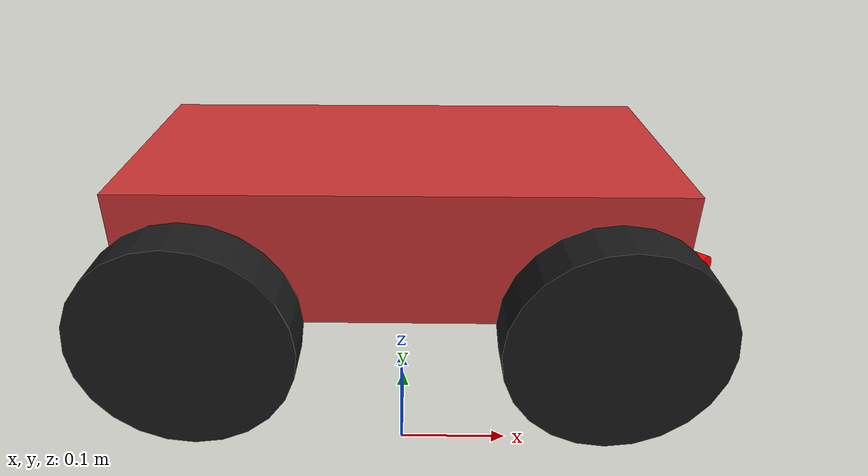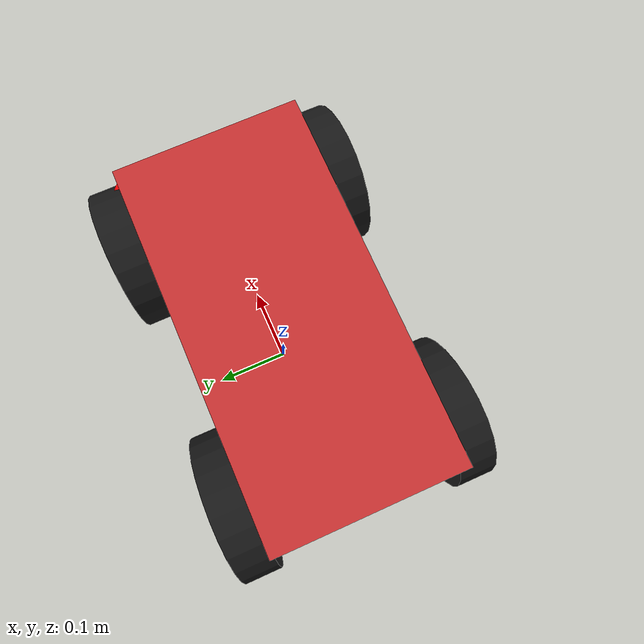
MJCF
<mujoco model="agricultural_rover_base">
    <option gravity="0 0 -9.81" timestep="0.005" integrator="implicitfast"/>

    <default>
        <geom condim="3" friction="1 0.005 0.0001" solref="0.01 1" solimp=".9 .95 .001"/>
        <joint damping="0.1"/>
    </default>

    <asset>
        <texture name="grass_tex" type="2d" builtin="checker" rgb1="0.22 0.50 0.15" rgb2="0.28 0.55 0.20" width="512" height="512"/>
        <material name="grass_mat" texture="grass_tex" texrepeat="12 12" texuniform="true" reflectance="0.05"/>

        <texture name="dirt_tex" type="2d" builtin="flat" rgb1="0.55 0.38 0.22" rgb2="0.50 0.35 0.20" width="64" height="64"/>
        <material name="dirt_mat" texture="dirt_tex" reflectance="0.02"/>

        <texture name="sky_tex" type="skybox" builtin="gradient" rgb1="0.40 0.65 0.95" rgb2="0.85 0.92 1.0" width="512" height="512"/>

        <material name="trunk_mat"  rgba="0.45 0.28 0.12 1" reflectance="0.05"/>
        <material name="canopy_mat" rgba="0.18 0.55 0.18 1" reflectance="0.1"/>
        <material name="crop_mat"   rgba="0.35 0.62 0.18 1" reflectance="0.05"/>
        <material name="crop_ripe_mat" rgba="0.80 0.72 0.15 1" reflectance="0.05"/>
        <material name="weed_mat" rgba="0.25 0.65 0.18 1" reflectance="0.08"/>
        <material name="fence_mat" rgba="0.60 0.42 0.22 1" reflectance="0.05"/>
        <material name="rock_mat" rgba="0.5 0.5 0.5 1"/>

        <material name="rover_mat" rgba="0.8 0.2 0.2 1" reflectance="0.3"/>
        <material name="wheel_mat" rgba="0.1 0.1 0.1 1"/>

        <hfield name="terrain" nrow="60" ncol="60" size="20 20 0.3 0.1"/>
    </asset>

    <worldbody>
        <light name="sun" directional="true" diffuse="1.0 0.95 0.8" specular="0.3 0.3 0.3"
               pos="5 -3 8" dir="-0.3 0.2 -1" castshadow="true"/>
        <light name="fill" directional="true" diffuse="0.3 0.35 0.45" specular="0.05 0.05 0.05"
               pos="-4 4 6" dir="0.3 -0.3 -1" castshadow="false"/>

        <body name="rover" pos="0 0 0.25">
            <joint type="free"/>
            <geom name="chassis" type="box" size="0.2 0.1 0.05" material="rover_mat" mass="5"/>

            <site name="marker" pos="0.2 0 0" size="0.02" rgba="0 0 1 1"/>

            <body name="fl_wheel" pos="0.15 0.12 -0.05" euler="90 0 0">
                <joint name="fl-wheel" type="hinge" axis="0 0 -1" damping="0.1"/>
                <geom name="fl_wheel_geom" type="cylinder" size="0.08 0.02" material="wheel_mat" mass="1"/>
            </body>
            <body name="fr_wheel" pos="0.15 -0.12 -0.05" euler="90 0 0">
                <joint name="fr-wheel" type="hinge" axis="0 0 -1" damping="0.1"/>
                <geom name="fr_wheel_geom" type="cylinder" size="0.08 0.02" material="wheel_mat" mass="1"/>
            </body>
            <body name="rl_wheel" pos="-0.15 0.12 -0.05" euler="90 0 0">
                <joint name="rl-wheel" type="hinge" axis="0 0 -1" damping="0.1"/>
                <geom name="rl_wheel_geom" type="cylinder" size="0.08 0.02" material="wheel_mat" mass="1"/>
            </body>
            <body name="rr_wheel" pos="-0.15 -0.12 -0.05" euler="90 0 0">
                <joint name="rr-wheel" type="hinge" axis="0 0 -1" damping="0.1"/>
                <geom name="rr_wheel_geom" type="cylinder" size="0.08 0.02" material="wheel_mat" mass="1"/>
            </body>

            <site name="ray_front" pos="0.2 0 0" zaxis="1 0 0" type="cylinder" size="0.01 0.01" rgba="1 0 0 1"/>
            <site name="ray_left" pos="0.2 0.1 0" zaxis="1 1 0" type="cylinder" size="0.01 0.01" rgba="1 0 0 1"/>
            <site name="ray_right" pos="0.2 -0.1 0" zaxis="1 -1 0" type="cylinder" size="0.01 0.01" rgba="1 0 0 1"/>
        </body>
    </worldbody>

    <sensor>
        <rangefinder name="rf_front" site="ray_front" cutoff="5.0"/>
        <rangefinder name="rf_left" site="ray_left" cutoff="5.0"/>
        <rangefinder name="rf_right" site="ray_right" cutoff="5.0"/>
        <framepos name="rover_pos" objtype="site" objname="marker"/>
    </sensor>

    <actuator>
        <velocity name="fl-velocity" joint="fl-wheel" kv="10"/>
        <velocity name="rl-velocity" joint="rl-wheel" kv="10"/>
        <velocity name="fr-velocity" joint="fr-wheel" kv="10"/>
        <velocity name="rr-velocity" joint="rr-wheel" kv="10"/>
    </actuator>
</mujoco>
